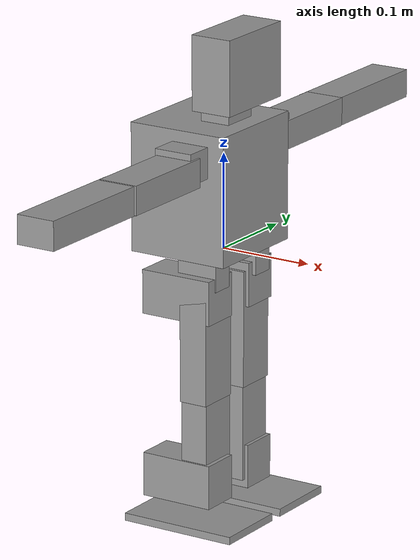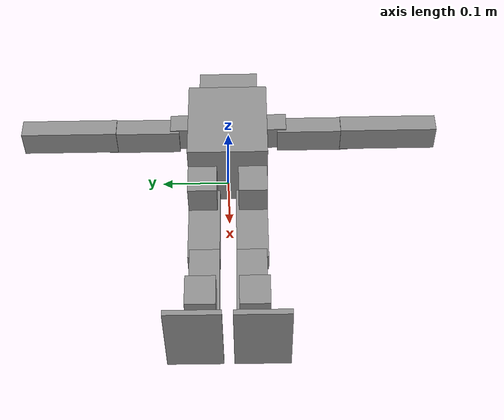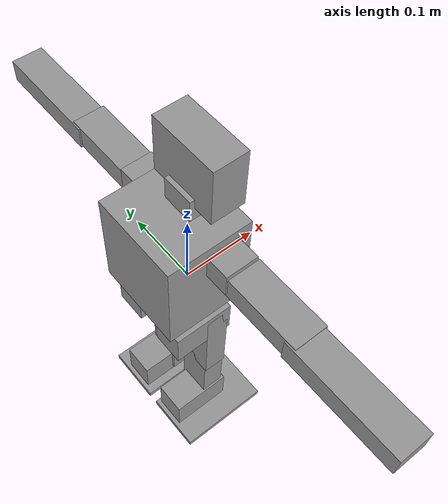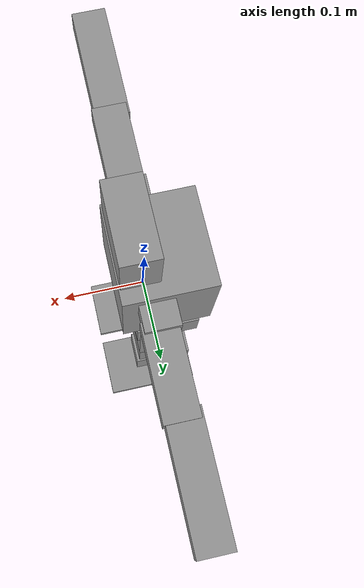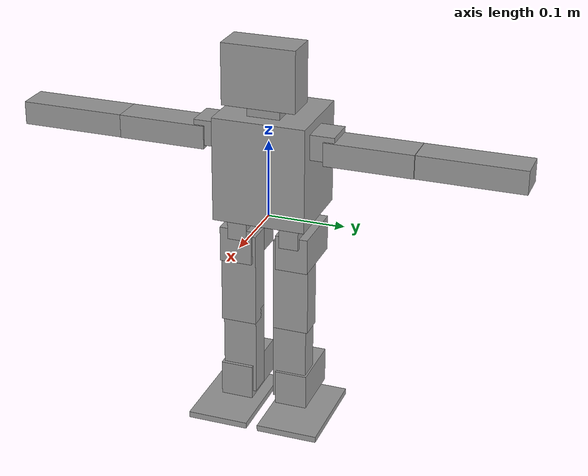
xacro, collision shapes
<?xml version="1.0" ?>
<robot xmlns:xacro="http://ros.org/wiki/xacro" name="robotis_op3">

  <xacro:include filename="$(find op3_description)/urdf/robotis_op3.visuals.xacro" />
  <xacro:include filename="$(find op3_description)/urdf/robotis_op3.inertia.xacro" />

  <xacro:include filename="$(find op3_description)/urdf/robotis_op3.structure.rarm.xacro" />
  <xacro:include filename="$(find op3_description)/urdf/robotis_op3.structure.larm.xacro" />

  <xacro:include filename="$(find op3_description)/urdf/robotis_op3.structure.rleg.xacro" />
  <xacro:include filename="$(find op3_description)/urdf/robotis_op3.structure.lleg.xacro" />

  <xacro:include filename="$(find op3_description)/urdf/robotis_op3.structure.head.xacro" />

  <xacro:include filename="$(find op3_description)/urdf/robotis_op3.ros2.gazebo.xacro" />

  <link name="base"/>

  <joint name="base_fixed" type="fixed">
    <origin xyz="0 0 0" rpy="0 0 0"/>
    <parent link="base"/>
    <child link="body_link"/>
  </joint>

  <!-- body link -->
  <link name="body_link">
    <visual>
      <xacro:insert_mesh_body_link />
    </visual>
    <collision>
      <origin xyz="-0.016750 0 0.068250" rpy="0 0 0"/>
      <geometry>
        <box size="0.11 0.12 0.135"/>
      </geometry>
    </collision>
    <inertial>
      <xacro:insert_inertia_body_link />
    </inertial>
  </link>

  <!-- arm link -->
  <xacro:robotis_op3_r_arm parent="body_link" />
  <xacro:robotis_op3_l_arm parent="body_link" />

  <!-- leg link -->
  <xacro:robotis_op3_r_leg parent="body_link" />
  <xacro:robotis_op3_l_leg parent="body_link" />

  <!-- head links -->
  <xacro:robotis_op3_head parent="body_link" />

  <xacro:robotis_op3_gazebo/>

</robot>

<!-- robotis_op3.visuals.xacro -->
<robot xmlns:xacro="http://ros.org/wiki/xacro">

  <!-- body link -->
  <xacro:macro name="insert_mesh_body_link">
    <origin xyz="0 0 0" rpy="0 0 0" />
    <geometry>
      <mesh filename="package://op3_description/meshes/body.stl"  scale="0.001 0.001 0.001"/>
    </geometry>
    <material name="Grey">
      <color rgba="0.60 0.60 0.60 1.0"/>
    </material>
  </xacro:macro>

  <!-- right hip yaw link -->
  <xacro:macro name="insert_mesh_r_hip_yaw_link">
    <origin xyz="0 0 0" rpy="0 0 0" />
    <geometry>
      <mesh filename="package://op3_description/meshes/rl1.stl"  scale="0.001 0.001 0.001"/>
    </geometry>
    <material name="Grey">
      <color rgba="0.60 0.60 0.60 1.0"/>
    </material>
  </xacro:macro>

  <!-- right hip roll link -->
  <xacro:macro name="insert_mesh_r_hip_roll_link">
    <origin xyz="0 0 0" rpy="0 0 0" />
    <geometry>
      <mesh filename="package://op3_description/meshes/rl2.stl"  scale="0.001 0.001 0.001"/>
    </geometry>
    <material name="Grey">
      <color rgba="0.60 0.60 0.60 1.0"/>
    </material>
  </xacro:macro>

  <!-- right hip pitch link -->
  <xacro:macro name="insert_mesh_r_hip_pitch_link">
    <origin xyz="0 0 0" rpy="0 0 0" />
    <geometry>
      <mesh filename="package://op3_description/meshes/rl3.stl"  scale="0.001 0.001 0.001"/>
    </geometry>
    <material name="Grey">
      <color rgba="0.60 0.60 0.60 1.0"/>
    </material>
  </xacro:macro>

  <!-- right knee link -->
  <xacro:macro name="insert_mesh_r_knee_link">
    <origin xyz="0 0 0" rpy="0 0 0" />
    <geometry>
      <mesh filename="package://op3_description/meshes/rl4.stl"  scale="0.001 0.001 0.001"/>
    </geometry>
    <material name="Grey">
      <color rgba="0.60 0.60 0.60 1.0"/>
    </material>
  </xacro:macro>

  <!-- right ankle pitch link -->
  <xacro:macro name="insert_mesh_r_ank_pitch_link">
    <origin xyz="0 0 0" rpy="0 0 0" />
    <geometry>
      <mesh filename="package://op3_description/meshes/rl5.stl"  scale="0.001 0.001 0.001"/>
    </geometry>
    <material name="Grey">
      <color rgba="0.60 0.60 0.60 1.0"/>
    </material>
  </xacro:macro>

  <!-- right ankle roll link -->
  <xacro:macro name="insert_mesh_r_ank_roll_link">
    <origin xyz="0 0 0" rpy="0 0 0" />
    <geometry>
      <mesh filename="package://op3_description/meshes/rl6.stl"  scale="0.001 0.001 0.001"/>
    </geometry>
    <material name="Grey">
      <color rgba="0.60 0.60 0.60 1.0"/>
    </material>
  </xacro:macro>

  <!-- left hip yaw link -->
  <xacro:macro name="insert_mesh_l_hip_yaw_link">
    <origin xyz="0 0 0" rpy="0 0 0" />
    <geometry>
      <mesh filename="package://op3_description/meshes/ll1.stl"  scale="0.001 0.001 0.001"/>
    </geometry>
    <material name="Grey">
      <color rgba="0.60 0.60 0.60 1.0"/>
    </material>
  </xacro:macro>

  <!-- left hip roll link -->
  <xacro:macro name="insert_mesh_l_hip_roll_link">
    <origin xyz="0 0 0" rpy="0 0 0" />
    <geometry>
      <mesh filename="package://op3_description/meshes/ll2.stl"  scale="0.001 0.001 0.001"/>
    </geometry>
    <material name="Grey">
      <color rgba="0.60 0.60 0.60 1.0"/>
    </material>
  </xacro:macro>

  <!-- left hip pitch link -->
  <xacro:macro name="insert_mesh_l_hip_pitch_link">
    <origin xyz="0 0 0" rpy="0 0 0" />
    <geometry>
      <mesh filename="package://op3_description/meshes/ll3.stl"  scale="0.001 0.001 0.001"/>
    </geometry>
    <material name="Grey">
      <color rgba="0.60 0.60 0.60 1.0"/>
    </material>
  </xacro:macro>

  <!-- left knee link -->
  <xacro:macro name="insert_mesh_l_knee_link">
    <origin xyz="0 0 0" rpy="0 0 0" />
    <geometry>
      <mesh filename="package://op3_description/meshes/ll4.stl"  scale="0.001 0.001 0.001"/>
    </geometry>
    <material name="Grey">
      <color rgba="0.60 0.60 0.60 1.0"/>
    </material>
  </xacro:macro>

  <!-- left ankle pitch link -->
  <xacro:macro name="insert_mesh_l_ank_pitch_link">
    <origin xyz="0 0 0" rpy="0 0 0" />
    <geometry>
      <mesh filename="package://op3_description/meshes/ll5.stl"  scale="0.001 0.001 0.001"/>
    </geometry>
    <material name="Grey">
      <color rgba="0.60 0.60 0.60 1.0"/>
    </material>
  </xacro:macro>

  <!-- left ankle roll link -->
  <xacro:macro name="insert_mesh_l_ank_roll_link">
    <origin xyz="0 0 0" rpy="0 0 0" />
    <geometry>
      <mesh filename="package://op3_description/meshes/ll6.stl"  scale="0.001 0.001 0.001"/>
    </geometry>
    <material name="Grey">
      <color rgba="0.60 0.60 0.60 1.0"/>
    </material>
  </xacro:macro>

  <!-- right shoulder pitch joint -->
  <xacro:macro name="insert_mesh_r_sho_pitch_link">
    <origin xyz="0 0 0" rpy="0 0 0" />
    <geometry>
      <mesh filename="package://op3_description/meshes/ra1.stl"  scale="0.001 0.001 0.001"/>
    </geometry>
    <material name="Grey">
      <color rgba="0.60 0.60 0.60 1.0"/>
    </material>
  </xacro:macro>

  <!-- right shoulder pitch joint -->
  <xacro:macro name="insert_mesh_r_sho_roll_link">
    <origin xyz="0 0 0" rpy="0 0 0" />
    <geometry>
      <mesh filename="package://op3_description/meshes/ra2.stl"  scale="0.001 0.001 0.001"/>
    </geometry>
    <material name="Grey">
      <color rgba="0.60 0.60 0.60 1.0"/>
    </material>
  </xacro:macro>

  <!-- right elbow joint -->
  <xacro:macro name="insert_mesh_r_el_link">
    <origin xyz="0 0 0" rpy="0 0 0" />
    <geometry>
      <mesh filename="package://op3_description/meshes/ra3.stl"  scale="0.001 0.001 0.001"/>
    </geometry>
    <material name="Grey">
      <color rgba="0.60 0.60 0.60 1.0"/>
    </material>
  </xacro:macro>

  <!-- left shoulder pitch joint -->
  <xacro:macro name="insert_mesh_l_sho_pitch_link">
    <origin xyz="0 0 0" rpy="0 0 0" />
    <geometry>
      <mesh filename="package://op3_description/meshes/la1.stl"  scale="0.001 0.001 0.001"/>
    </geometry>
    <material name="Grey">
      <color rgba="0.60 0.60 0.60 1.0"/>
    </material>
  </xacro:macro>

  <!-- left shoulder pitch joint -->
  <xacro:macro name="insert_mesh_l_sho_roll_link">
    <origin xyz="0 0 0" rpy="0 0 0" />
    <geometry>
      <mesh filename="package://op3_description/meshes/la2.stl"  scale="0.001 0.001 0.001"/>
    </geometry>
    <material name="Grey">
      <color rgba="0.60 0.60 0.60 1.0"/>
    </material>
  </xacro:macro>

  <!-- left elbow joint -->
  <xacro:macro name="insert_mesh_l_el_link">
    <origin xyz="0 0 0" rpy="0 0 0" />
    <geometry>
      <mesh filename="package://op3_description/meshes/la3.stl"  scale="0.001 0.001 0.001"/>
    </geometry>
    <material name="Grey">
      <color rgba="0.60 0.60 0.60 1.0"/>
    </material>
  </xacro:macro>

  <!-- head yaw joint -->
  <xacro:macro name="insert_mesh_head_pan_link">
    <origin xyz="0 0 0" rpy="0 0 0" />
    <geometry>
      <mesh filename="package://op3_description/meshes/h1.stl"  scale="0.001 0.001 0.001"/>
    </geometry>
    <material name="Grey">
      <color rgba="0.60 0.60 0.60 1.0"/>
    </material>
  </xacro:macro>

  <!-- head yaw joint -->
  <xacro:macro name="insert_mesh_head_tilt_link">
    <origin xyz="0 0 0" rpy="0 0 0" />
    <geometry>
      <mesh filename="package://op3_description/meshes/h2.stl"  scale="0.001 0.001 0.001"/>
    </geometry>
    <material name="Grey">
      <color rgba="0.60 0.60 0.60 1.0"/>
    </material>
  </xacro:macro>

</robot>

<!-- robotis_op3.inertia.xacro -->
<robot xmlns:xacro="http://ros.org/wiki/xacro">

  <!-- body link -->
  <xacro:macro name="insert_inertia_body_link">
    <origin xyz="-0.01501 0.00013 0.06582" />
    <mass value="1.34928"/>
    <inertia ixx="0.00340499" ixy="0.00000572" ixz="-0.00004256"
             iyy="0.00296939" iyz="-0.00000059"
             izz="0.00317331" />
  </xacro:macro>

  <!-- right hip yaw link -->
  <xacro:macro name="insert_inertia_r_hip_yaw_link">
    <origin xyz="-0.00157 0.00000 -0.00774" />
    <mass value="0.01181"/>
    <inertia ixx="0.00000151" ixy="0.0" ixz="0.00000001"
             iyy="0.00000430" iyz="0.0"
             izz="0.00000412" />
  </xacro:macro>

  <!-- right hip roll link -->
  <xacro:macro name="insert_inertia_r_hip_roll_link">
    <origin xyz="0.00388 -0.00028 -0.01214" />
    <mass value="0.17886"/>
    <inertia ixx="0.00004661" ixy="0.00000101" ixz="-0.00000131"
             iyy="0.00012523" iyz="0.00000006"
             izz="0.00010857" />
  </xacro:macro>

  <!-- right hip pitch link -->
  <xacro:macro name="insert_inertia_r_hip_pitch_link">
    <origin xyz="0.00059 0.01901 -0.08408" />
    <mass value="0.11543"/>
    <inertia ixx="0.00010499" ixy="0.00000001" ixz="-0.00000071"
             iyy="0.00009613" iyz="-0.00000353"
             izz="0.00002493" />
  </xacro:macro>

  <!-- right knee link -->
  <xacro:macro name="insert_inertia_r_knee_link">
    <origin xyz="0.00000 0.02151 -0.05500" />
    <mass value="0.04015"/>
    <inertia ixx="0.00003715" ixy="0.0" ixz="0.0"
             iyy="0.00002751" iyz="0.0"
             izz="0.00001511" />
  </xacro:macro>

  <!-- right ankle pitch link -->
  <xacro:macro name="insert_inertia_r_ank_pitch_link">
    <origin xyz="-0.02022 0.01872 0.01214" />
    <mass value="0.17886"/>
    <inertia ixx="0.00004661" ixy="0.00000101" ixz="0.00000131"
             iyy="0.00012523" iyz="-0.00000006"
             izz="0.00010857" />
  </xacro:macro>

  <!-- right ankle roll link -->
  <xacro:macro name="insert_inertia_r_ank_roll_link">
    <origin xyz="0.02373 -0.01037 -0.02760" />
    <mass value="0.06934"/>
    <inertia ixx="0.00004034" ixy="0.00000019" ixz="0.00000012"
             iyy="0.00007874" iyz="-0.00000101"
             izz="0.00011579" />
  </xacro:macro>

  <!-- left hip yaw link -->
  <xacro:macro name="insert_inertia_l_hip_yaw_link">
    <origin xyz="-0.00157 0.00000 -0.00774" />
    <mass value="0.01181"/>
    <inertia ixx="0.00000151" ixy="0.0" ixz="0.00000001"
             iyy="0.00000430" iyz="0.0"
             izz="0.00000412" />
  </xacro:macro>

  <!-- left hip roll link -->
  <xacro:macro name="insert_inertia_l_hip_roll_link">
    <origin xyz="0.00388 0.00028 -0.01214" />
    <mass value="0.17886"/>
    <inertia ixx="0.00004661" ixy="-0.00000101" ixz="-0.00000131"
             iyy="0.00012523" iyz="-0.00000006"
             izz="0.00010857" />
  </xacro:macro>

  <!-- left hip pitch link -->
  <xacro:macro name="insert_inertia_l_hip_pitch_link">
    <origin xyz="0.00059 -0.01901 -0.08408" />
    <mass value="0.11543"/>
    <inertia ixx="0.00010499" ixy="-0.00000001" ixz="-0.00000071"
             iyy="0.00009613" iyz="0.00000353"
             izz="0.00002493" />
  </xacro:macro>

  <!-- left knee link -->
  <xacro:macro name="insert_inertia_l_knee_link">
    <origin xyz="0.00000 -0.02151 -0.05500" />
    <mass value="0.04015"/>
    <inertia ixx="0.00003715" ixy="0.0" ixz="0.0"
             iyy="0.00002751" iyz="0.0"
             izz="0.00001511" />
  </xacro:macro>

  <!-- left ankle pitch link -->
  <xacro:macro name="insert_inertia_l_ank_pitch_link">
    <origin xyz="-0.02022 -0.01872 0.01214" />
    <mass value="0.17886"/>
    <inertia ixx="0.00004661" ixy="-0.00000101" ixz="0.00000131"
             iyy="0.00012523" iyz="0.00000006"
             izz="0.00010857" />
  </xacro:macro>

  <!-- left ankle roll link -->
  <xacro:macro name="insert_inertia_l_ank_roll_link">
    <origin xyz="0.02373 0.01037 -0.02760" />
    <mass value="0.06934"/>
    <inertia ixx="0.00004034" ixy="-0.00000019" ixz="0.00000012"
             iyy="0.00007874" iyz="0.00000101"
             izz="0.00011579" />
  </xacro:macro>

  <!-- right shoulder pitch joint -->
  <xacro:macro name="insert_inertia_r_sho_pitch_link">
    <origin xyz="0.0 -0.00823 -0.00233" />
    <mass value="0.01176"/>
    <inertia ixx="0.00000165" ixy="0.0" ixz="0.0"
             iyy="0.00000387" iyz="-0.00000031"
             izz="0.00000397" />
  </xacro:macro>

  <!-- right shoulder roll joint -->
  <xacro:macro name="insert_inertia_r_sho_roll_link">
    <origin xyz="-0.01844 -0.04514 0.00028" />
    <mass value="0.17758"/>
    <inertia ixx="0.00022804" ixy="0.00000001" ixz="0.00000003"
             iyy="0.00003042" iyz="-0.00000059"
             izz="0.00023474" />
  </xacro:macro>

  <!-- right elbow joint -->
  <xacro:macro name="insert_inertia_r_el_link">
    <origin xyz="-0.01900 -0.07033 0.00380" />
    <mass value="0.04127"/>
    <inertia ixx="0.00006196" ixy="0.0" ixz="0.0"
             iyy="0.00001231" iyz="0.00000372"
             izz="0.00006854" />
  </xacro:macro>

  <!-- left shoulder pitch joint -->
  <xacro:macro name="insert_inertia_l_sho_pitch_link">
    <origin xyz="0.0 0.00823 -0.00233" />
    <mass value="0.01176"/>
    <inertia ixx="0.00000165" ixy="0.0" ixz="0.0"
             iyy="0.00000387" iyz="0.00000031"
             izz="0.00000397" />
  </xacro:macro>

  <!-- left shoulder roll joint -->
  <xacro:macro name="insert_inertia_l_sho_roll_link">
    <origin xyz="-0.01844 0.04514 0.00028" />
    <mass value="0.17758"/>
    <inertia ixx="0.00022804" ixy="-0.00000001" ixz="0.00000003"
             iyy="0.00003042" iyz="0.00000059"
             izz="0.00023474" />
  </xacro:macro>

  <!-- left elbow joint -->
  <xacro:macro name="insert_inertia_l_el_link">
    <origin xyz="-0.01900 0.07033 0.00380" />
    <mass value="0.04127"/>
    <inertia ixx="0.00006196" ixy="0.0" ixz="0.0"
             iyy="0.00001231" iyz="-0.00000372"
             izz="0.00006854" />
  </xacro:macro>

  <!-- head yaw joint -->
  <xacro:macro name="insert_inertia_head_pan_link">
    <origin xyz="0.00233 0.00000 0.00823" />
    <mass value="0.01176"/>
    <inertia ixx="0.00000397" ixy="0.0" ixz="-0.00000031"
             iyy="0.00000165" iyz="0.0"
             izz="0.00000387" />
  </xacro:macro>

  <!-- head pitch joint -->
  <xacro:macro name="insert_inertia_head_tilt_link">
    <origin xyz="0.00230 -0.01863 0.02770" />
    <mass value="0.13631"/>
    <inertia ixx="0.00010612" ixy="0.00000011" ixz="-0.00000910"
             iyy="0.00008721" iyz="0.00000084"
             izz="0.00004529" />
  </xacro:macro>

</robot>

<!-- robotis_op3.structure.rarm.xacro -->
<robot xmlns:xacro="http://ros.org/wiki/xacro">

  <!-- right arm -->
  <xacro:macro name="robotis_op3_r_arm" params="parent">

  <!-- right shoulder pitch joint -->
  <joint name="r_sho_pitch" type="revolute">
    <parent link="${parent}"/>
    <child link="r_sho_pitch_link"/>
    <origin xyz="-0.001 -0.06 0.111" rpy="0 0 0" />
    <axis xyz="0 -1 0" />
    <limit effort="1000" velocity="100" lower="${-pi*0.9}" upper="${pi*0.9}" />
    <dynamics damping="0.1" friction="0.0" />
  </joint>
  <xacro:insert_transmission name="r_sho_pitch" />

  <!-- right shoulder pitch link -->
  <link name="r_sho_pitch_link">
    <visual>
      <xacro:insert_mesh_r_sho_pitch_link />
    </visual>
    <collision>
      <origin xyz="0.000000 -0.015500 -0.003750" rpy="0 0 0"/>
      <geometry>
        <box size="0.042000 0.031000 0.032500"/>
      </geometry>
    </collision>
    <inertial>
      <xacro:insert_inertia_r_sho_pitch_link />
    </inertial>
  </link>

  <!-- right shoulder roll joint -->
  <joint name="r_sho_roll" type="revolute">
    <parent link="r_sho_pitch_link"/>
    <child link="r_sho_roll_link"/>
    <origin xyz="0.019 -0.0285 -0.010" rpy="0 0 0" />
    <axis xyz="-1 0 0" />
    <limit effort="1000" velocity="100" lower="${-pi*0.9}" upper="${pi*0.9}" />
    <dynamics damping="0.1" friction="0.0" />
  </joint>
  <xacro:insert_transmission name="r_sho_roll" />

  <!-- right shoulder roll link -->
  <link name="r_sho_roll_link">
    <visual>
      <xacro:insert_mesh_r_sho_roll_link />
    </visual>
    <collision>
      <origin xyz="-0.016800 -0.045200 0.000700" rpy="0 0 0"/>
      <geometry>
        <box size="0.042400 0.112900 0.030100"/>
      </geometry>
    </collision>
    <inertial>
      <xacro:insert_inertia_r_sho_roll_link />
    </inertial>
  </link>

  <!-- right elbow joint -->
  <joint name="r_el" type="revolute">
    <parent link="r_sho_roll_link"/>
    <child link="r_el_link"/>
    <origin xyz="0.0 -0.0904 -0.0001" rpy="0 0 0" />
    <axis xyz="1 0 0" />
    <limit effort="1000" velocity="100" lower="${-pi*0.9}" upper="${pi*0.9}" />
    <dynamics damping="0.1" friction="0.0" />
  </joint>
  <xacro:insert_transmission name="r_el" />

  <!-- right elbow link -->
  <link name="r_el_link">
    <visual>
      <xacro:insert_mesh_r_el_link />
    </visual>
    <collision>
      <origin xyz="-0.019000 -0.072005 0.000000" rpy="0 0 0"/>
      <geometry>
        <box size="0.042000 0.149010 0.030000"/>
      </geometry>
    </collision>
    <inertial>
      <xacro:insert_inertia_r_el_link />
    </inertial>
  </link>

  </xacro:macro>

</robot>

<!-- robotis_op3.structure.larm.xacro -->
<robot xmlns:xacro="http://ros.org/wiki/xacro">

  <!-- left leg -->
  <xacro:macro name="robotis_op3_l_arm" params="parent">

  <!-- left shoulder pitch joint -->
  <joint name="l_sho_pitch" type="revolute">
    <parent link="${parent}"/>
    <child link="l_sho_pitch_link"/>
    <origin xyz="-0.001 0.06 0.111" rpy="0 0 0" />
    <axis xyz="0 1 0" />
    <limit effort="1000" velocity="100" lower="${-pi*0.9}" upper="${pi*0.9}" />
    <dynamics damping="0.1" friction="0.0" />
  </joint>
  <xacro:insert_transmission name="l_sho_pitch" />

  <!-- left shoulder pitch link -->
  <link name="l_sho_pitch_link">
    <visual>
      <xacro:insert_mesh_l_sho_pitch_link />
    </visual>
    <collision>
      <origin xyz="0.000000 0.015500 -0.003750" rpy="0 0 0"/>
      <geometry>
        <box size="0.042000 0.031000 0.032500"/>
      </geometry>
    </collision>
    <inertial>
      <xacro:insert_inertia_l_sho_pitch_link />
    </inertial>
  </link>

  <!-- left shoulder roll joint -->
  <joint name="l_sho_roll" type="revolute">
    <parent link="l_sho_pitch_link"/>
    <child link="l_sho_roll_link"/>
    <origin xyz="0.019 0.0285 -0.010" rpy="0 0 0" />
    <axis xyz="-1 0 0" />
    <limit effort="1000" velocity="100" lower="${-pi*0.9}" upper="${pi*0.9}" />
    <dynamics damping="0.1" friction="0.0" />
  </joint>
  <xacro:insert_transmission name="l_sho_roll" />

  <!-- left shoulder roll link -->
  <link name="l_sho_roll_link">
    <visual>
      <xacro:insert_mesh_l_sho_roll_link />
    </visual>
    <collision>
      <origin xyz="-0.016800 0.045200 0.000700" rpy="0 0 0"/>
      <geometry>
        <box size="0.042400 0.112900 0.030100"/>
      </geometry>
    </collision>
    <inertial>
      <xacro:insert_inertia_l_sho_roll_link />
    </inertial>
  </link>

  <!-- left elbow joint -->
  <joint name="l_el" type="revolute">
    <parent link="l_sho_roll_link"/>
    <child link="l_el_link"/>
    <origin xyz="0.0 0.0904 -0.0001" rpy="0 0 0" />
    <axis xyz="1 0 0" />
    <limit effort="1000" velocity="100" lower="${-pi*0.9}" upper="${pi*0.9}" />
    <dynamics damping="0.1" friction="0.0" />
  </joint>
  <xacro:insert_transmission name="l_el" />

  <!-- left elbow link -->
  <link name="l_el_link">
    <visual>
      <xacro:insert_mesh_l_el_link />
    </visual>
    <collision>
      <origin xyz="-0.019000 0.072005 0.000000" rpy="0 0 0"/>
      <geometry>
        <box size="0.042000 0.149010 0.030000"/>
      </geometry>
    </collision>
    <inertial>
      <xacro:insert_inertia_l_el_link />
    </inertial>
  </link>

  </xacro:macro>

</robot>

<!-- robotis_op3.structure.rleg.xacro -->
<robot xmlns:xacro="http://ros.org/wiki/xacro">

  <!-- right leg -->
  <xacro:macro name="robotis_op3_r_leg" params="parent">

  <!-- right hip yaw joint -->
  <joint name="r_hip_yaw" type="revolute">
    <parent link="${parent}"/>
    <child link="r_hip_yaw_link"/>
    <origin xyz="0.0 -0.035 0.0" rpy="0 0 0" />
    <axis xyz="0 0 -1" />
    <limit effort="1000" velocity="100" lower="${-pi*0.9}" upper="${pi*0.9}" />
    <dynamics damping="0.1" friction="0.0" />
  </joint>
  <xacro:insert_transmission name="r_hip_yaw" />

  <!-- right hip yaw link -->
  <link name="r_hip_yaw_link">
    <visual>
      <xacro:insert_mesh_r_hip_yaw_link />
    </visual>
    <collision>
      <origin xyz="-0.001500 0.000000 -0.015500" rpy="0 0 0"/>
      <geometry>
        <box size="0.045000 0.025000 0.031000"/>
      </geometry>
    </collision>
    <inertial>
      <xacro:insert_inertia_r_hip_yaw_link />
    </inertial>
  </link>

  <!-- right hip roll joint -->
  <joint name="r_hip_roll" type="revolute">
    <parent link="r_hip_yaw_link"/>
    <child link="r_hip_roll_link"/>
    <origin xyz="-0.024 0.0 -0.0285" rpy="0 0 0" />
    <axis xyz="-1 0 0" />
    <limit effort="1000" velocity="100" lower="${-pi*0.9}" upper="${pi*0.9}" />
    <dynamics damping="0.1" friction="0.0" />
  </joint>
  <xacro:insert_transmission name="r_hip_roll" />

  <!-- right hip roll link -->
  <link name="r_hip_roll_link">
    <visual>
      <xacro:insert_mesh_r_hip_roll_link />
    </visual>
    <collision>
      <origin xyz="0.003875 -0.002200 -0.012000" rpy="0 0 0"/>
      <geometry>
        <box size="0.079750 0.042400 0.046500"/>
      </geometry>
    </collision>
    <inertial>
      <xacro:insert_inertia_r_hip_roll_link />
    </inertial>
  </link>

  <!-- right hip pitch joint -->
  <joint name="r_hip_pitch" type="revolute">
    <parent link="r_hip_roll_link"/>
    <child link="r_hip_pitch_link"/>
    <origin xyz="0.0241 -0.019 0.0" rpy="0 0 0" />
    <axis xyz="0 -1 0" />
    <limit effort="1000" velocity="100" lower="${-pi*0.9}" upper="${pi*0.9}" />
    <dynamics damping="0.1" friction="0.0" />
  </joint>
  <xacro:insert_transmission name="r_hip_pitch" />

  <!-- right hip pitch link -->
  <link name="r_hip_pitch_link">
    <visual>
      <xacro:insert_mesh_r_hip_pitch_link />
    </visual>
    <collision>
      <origin xyz="0.000425 0.018800 -0.059450" rpy="0 0 0"/>
      <geometry>
        <box size="0.030850 0.046400 0.123900"/>
      </geometry>
    </collision>
    <inertial>
      <xacro:insert_inertia_r_hip_pitch_link />
    </inertial>
  </link>

  <!-- right knee joint -->
  <joint name="r_knee" type="revolute">
    <parent link="r_hip_pitch_link"/>
    <child link="r_knee_link"/>
    <origin xyz="0.0 0.0 -0.11015" rpy="0 0 0" />
    <axis xyz="0 -1 0" />
    <limit effort="1000" velocity="100" lower="${-pi*0.9}" upper="${pi*0.9}" />
    <dynamics damping="0.1" friction="0.0" />
  </joint>
  <xacro:insert_transmission name="r_knee" />

  <!-- right hip pitch link -->
  <link name="r_knee_link">
    <visual>
      <xacro:insert_mesh_r_knee_link />
    </visual>
    <collision>
      <origin xyz="0.000000 0.020000 -0.055000" rpy="0 0 0"/>
      <geometry>
        <box size="0.030000 0.044000 0.115000"/>
      </geometry>
    </collision>
    <inertial>
      <xacro:insert_inertia_r_knee_link />
    </inertial>
  </link>

  <!-- right ankle pitch link -->
  <joint name="r_ank_pitch" type="revolute">
    <parent link="r_knee_link"/>
    <child link="r_ank_pitch_link"/>
    <origin xyz="0 0 -0.110" rpy="0 0 0" />
    <axis xyz="0 1 0" />
    <limit effort="1000" velocity="100" lower="${-pi*0.9}" upper="${pi*0.9}" />
    <dynamics damping="0.1" friction="0.0" />
  </joint>
  <xacro:insert_transmission name="r_ank_pitch" />

  <!-- right hip pitch link -->
  <link name="r_ank_pitch_link">
    <visual>
      <xacro:insert_mesh_r_ank_pitch_link />
    </visual>
    <collision>
      <origin xyz="-0.020225 0.016800 0.012000" rpy="0 0 0"/>
      <geometry>
        <box size="0.079750 0.042400 0.046500"/>
      </geometry>
    </collision>
    <inertial>
      <xacro:insert_inertia_r_ank_pitch_link />
    </inertial>
  </link>

  <!-- right ankle roll link -->
  <joint name="r_ank_roll" type="revolute">
    <parent link="r_ank_pitch_link"/>
    <child link="r_ank_roll_link"/>
    <origin xyz="-0.0241 0.019 0" rpy="0 0 0" />
    <axis xyz="1 0 0" />
    <limit effort="1000" velocity="100" lower="${-pi*0.9}" upper="${pi*0.9}" />
    <dynamics damping="0.1" friction="0.0" />
  </joint>
  <xacro:insert_transmission name="r_ank_roll" />

  <!-- right hip roll link -->
  <link name="r_ank_roll_link">
    <visual>
      <xacro:insert_mesh_r_ank_roll_link />
    </visual>
    <collision>
      <origin xyz="0.024000 -0.012500 -0.0265" rpy="0 0 0"/>
      <geometry>
        <box size="0.127000 0.080000 0.008"/>
      </geometry>
    </collision>
    <inertial>
      <xacro:insert_inertia_r_ank_roll_link />
    </inertial>
  </link>

  </xacro:macro>

</robot>

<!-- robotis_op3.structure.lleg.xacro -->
<robot xmlns:xacro="http://ros.org/wiki/xacro">

  <!-- left leg -->
  <xacro:macro name="robotis_op3_l_leg" params="parent">

  <!-- left hip yaw joint -->
  <joint name="l_hip_yaw" type="revolute">
    <parent link="${parent}"/>
    <child link="l_hip_yaw_link"/>
    <origin xyz="0.0 0.035 0.0" rpy="0 0 0" />
    <axis xyz="0 0 -1" />
    <limit effort="1000" velocity="100" lower="${-pi*0.9}" upper="${pi*0.9}" />
    <dynamics damping="0.1" friction="0.0" />
  </joint>
  <xacro:insert_transmission name="l_hip_yaw" />

  <!-- left hip yaw link -->
  <link name="l_hip_yaw_link">
    <visual>
      <xacro:insert_mesh_l_hip_yaw_link />
    </visual>
    <collision>
      <origin xyz="0.001500 0.000000 -0.015500" rpy="0 0 0"/>
      <geometry>
        <box size="0.045000 0.025000 0.031000"/>
      </geometry>
    </collision>
    <inertial>
      <xacro:insert_inertia_l_hip_yaw_link />
    </inertial>
  </link>

  <!-- left hip roll joint -->
  <joint name="l_hip_roll" type="revolute">
    <parent link="l_hip_yaw_link"/>
    <child link="l_hip_roll_link"/>
    <origin xyz="-0.024 0.0 -0.0285" rpy="0 0 0" />
    <axis xyz="-1 0 0" />
    <limit effort="1000" velocity="100" lower="${-pi*0.9}" upper="${pi*0.9}" />
    <dynamics damping="0.1" friction="0.0" />
  </joint>
  <xacro:insert_transmission name="l_hip_roll" />

  <!-- left hip roll link -->
  <link name="l_hip_roll_link">
    <visual>
      <xacro:insert_mesh_l_hip_roll_link />
    </visual>
    <collision>
      <origin xyz="0.003875 0.002200 -0.012000" rpy="0 0 0"/>
      <geometry>
        <box size="0.079750 0.042400 0.046500"/>
      </geometry>
    </collision>
    <inertial>
      <xacro:insert_inertia_l_hip_roll_link />
    </inertial>
  </link>

  <!-- left hip pitch joint -->
  <joint name="l_hip_pitch" type="revolute">
    <parent link="l_hip_roll_link"/>
    <child link="l_hip_pitch_link"/>
    <origin xyz="0.0241 0.019 0.0" rpy="0 0 0" />
    <axis xyz="0 1 0" />
    <limit effort="1000" velocity="100" lower="${-pi*0.9}" upper="${pi*0.9}" />
    <dynamics damping="0.1" friction="0.0" />
  </joint>
  <xacro:insert_transmission name="l_hip_pitch" />

  <!-- left hip pitch link -->
  <link name="l_hip_pitch_link">
    <visual>
      <xacro:insert_mesh_l_hip_pitch_link />
    </visual>
    <collision>
      <origin xyz="0.000425 -0.018800 -0.059450" rpy="0 0 0"/>
      <geometry>
        <box size="0.030850 0.046400 0.123900"/>
      </geometry>
    </collision>
    <inertial>
      <xacro:insert_inertia_l_hip_pitch_link />
    </inertial>
  </link>

  <!-- left knee joint -->
  <joint name="l_knee" type="revolute">
    <parent link="l_hip_pitch_link"/>
    <child link="l_knee_link"/>
    <origin xyz="0.0 0.0 -0.11015" rpy="0 0 0" />
    <axis xyz="0 1 0" />
    <limit effort="1000" velocity="100" lower="${-pi*0.9}" upper="${pi*0.9}" />
    <dynamics damping="0.1" friction="0.0" />
  </joint>
  <xacro:insert_transmission name="l_knee" />

  <!-- left hip pitch link -->
  <link name="l_knee_link">
    <visual>
      <xacro:insert_mesh_l_knee_link />
    </visual>
    <collision>
      <origin xyz="0.000000 -0.020000 -0.055000" rpy="0 0 0"/>
      <geometry>
        <box size="0.030000 0.044000 0.115000"/>
      </geometry>
    </collision>
    <inertial>
      <xacro:insert_inertia_l_knee_link />
    </inertial>
  </link>

  <!-- left ankle pitch link -->
  <joint name="l_ank_pitch" type="revolute">
    <parent link="l_knee_link"/>
    <child link="l_ank_pitch_link"/>
    <origin xyz="0 0 -0.110" rpy="0 0 0" />
    <axis xyz="0 -1 0" />
    <limit effort="1000" velocity="100" lower="${-pi*0.9}" upper="${pi*0.9}" />
    <dynamics damping="0.1" friction="0.0" />
  </joint>
  <xacro:insert_transmission name="l_ank_pitch" />

  <!-- left hip pitch link -->
  <link name="l_ank_pitch_link">
    <visual>
      <xacro:insert_mesh_l_ank_pitch_link />
    </visual>
    <collision>
      <origin xyz="-0.020600 -0.016800 0.012000" rpy="0 0 0"/>
      <geometry>
        <box size="0.079000 0.042400 0.046500"/>
      </geometry>
    </collision>
    <inertial>
      <xacro:insert_inertia_l_ank_pitch_link />
    </inertial>
  </link>

  <!-- left ankle roll link -->
  <joint name="l_ank_roll" type="revolute">
    <parent link="l_ank_pitch_link"/>
    <child link="l_ank_roll_link"/>
    <origin xyz="-0.0241 -0.019 0" rpy="0 0 0" />
    <axis xyz="1 0 0" />
    <limit effort="1000" velocity="100" lower="${-pi*0.9}" upper="${pi*0.9}" />
    <dynamics damping="0.1" friction="0.0" />
  </joint>
  <xacro:insert_transmission name="l_ank_roll" />

  <!-- left hip roll link -->
  <link name="l_ank_roll_link">
    <visual>
      <xacro:insert_mesh_l_ank_roll_link />
    </visual>
    <collision>
      <origin xyz="0.024000 0.012500 -0.0265" rpy="0 0 0"/>
      <geometry>
        <box size="0.127000 0.080000 0.008"/>
      </geometry>
    </collision>
    <inertial>
      <xacro:insert_inertia_l_ank_roll_link />
    </inertial>
  </link>

  </xacro:macro>

</robot>

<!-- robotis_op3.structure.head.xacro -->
<robot xmlns:xacro="http://ros.org/wiki/xacro">

  <!-- head -->
  <xacro:macro name="robotis_op3_head" params="parent">

  <!-- head yaw joint -->
  <joint name="head_pan" type="revolute">
    <parent link="${parent}"/>
    <child link="head_pan_link"/>
    <origin xyz="-0.001 0.0 0.1365" rpy="0 0 0" />
    <axis xyz="0 0 1" />
    <limit effort="1000" velocity="100" lower="${-pi*0.9}" upper="${pi*0.9}" />
    <dynamics damping="0.1" friction="0.0" />
  </joint>
  <xacro:insert_transmission name="head_pan" />

  <!-- head yaw link -->
  <link name="head_pan_link">
    <visual>
      <xacro:insert_mesh_head_pan_link />
    </visual>
    <collision>
      <origin xyz="0.003750 0.000000 0.015500" rpy="0 0 0"/>
      <geometry>
        <box size="0.032500 0.042000 0.031000"/>
      </geometry>
    </collision>
    <inertial>
      <xacro:insert_inertia_head_pan_link />
    </inertial>
  </link>

  <!-- head pitch joint -->
  <joint name="head_tilt" type="revolute">
    <parent link="head_pan_link"/>
    <child link="head_tilt_link"/>
    <origin xyz="0.010 0.019 0.0285" rpy="0 0 0" />
    <axis xyz="0 -1 0" />
    <limit effort="1000" velocity="100" lower="${-pi*0.9}" upper="${pi*0.9}" />
    <dynamics damping="0.1" friction="0.0" />
  </joint>
  <xacro:insert_transmission name="head_tilt" />

  <!-- head yaw link -->
  <link name="head_tilt_link">
    <visual>
      <xacro:insert_mesh_head_tilt_link />
    </visual>
    <collision>
      <origin xyz="0.006000 -0.019000 0.027750" rpy="0 0 0"/>
      <geometry>
        <box size="0.044500 0.094000 0.078000"/>
      </geometry>
    </collision>
    <inertial>
      <xacro:insert_inertia_head_tilt_link />
    </inertial>
  </link>

  <!-- camera joint -->
  <joint name="cam" type="fixed">
    <origin xyz="0.01425 -0.019 0.04975" rpy="${-pi*0.5} 0 ${-pi*0.5}"/>
    <parent link="head_tilt_link"/>
    <child link="cam_link"/>
  </joint>

  <joint name="cam_gazebo" type="fixed">
    <origin xyz="0.01425 -0.019 0.04975" rpy="0 0 0"/>
    <parent link="head_tilt_link"/>
    <child link="cam_gazebo_link"/>
  </joint>

  <!-- camera link -->
  <link name="cam_link">
  </link>

  <!-- camera link -->
  <link name="cam_gazebo_link">
  </link>

  </xacro:macro>

</robot>
